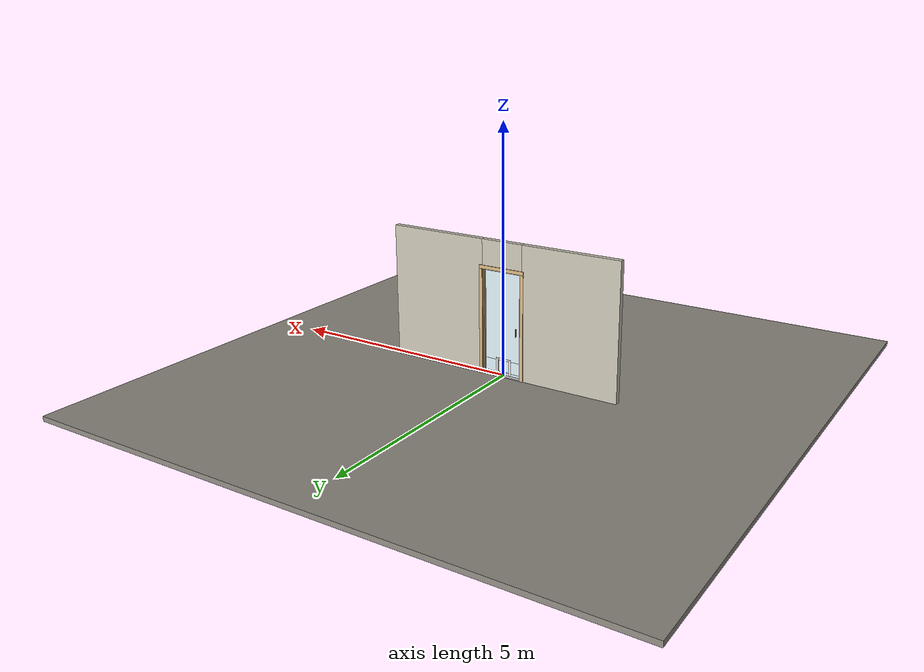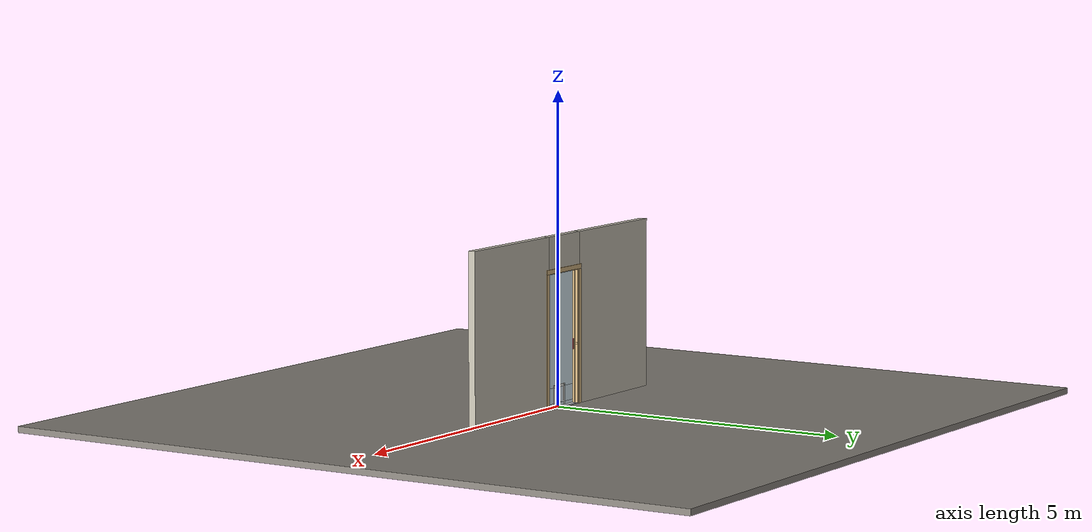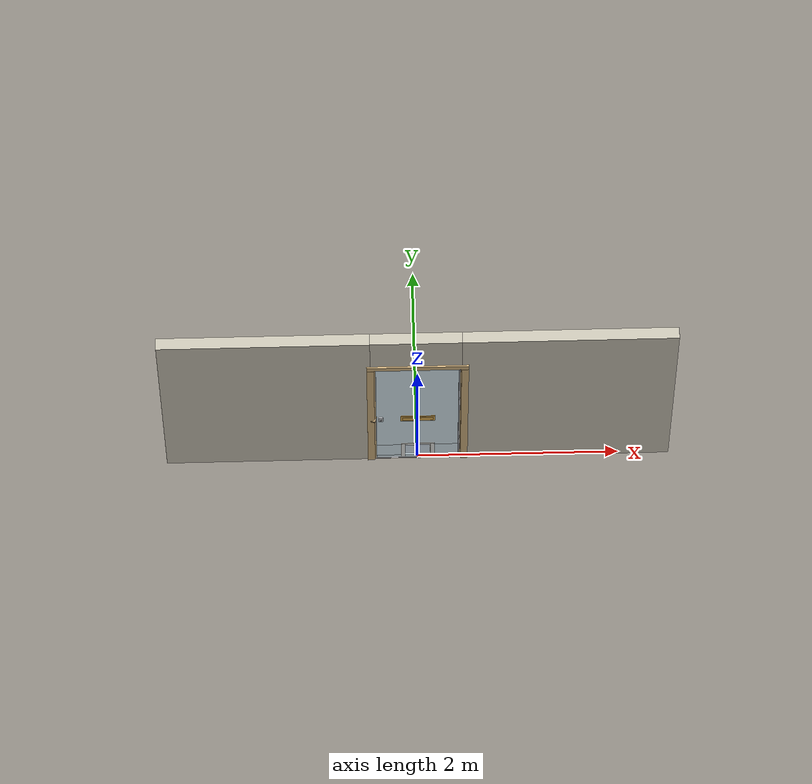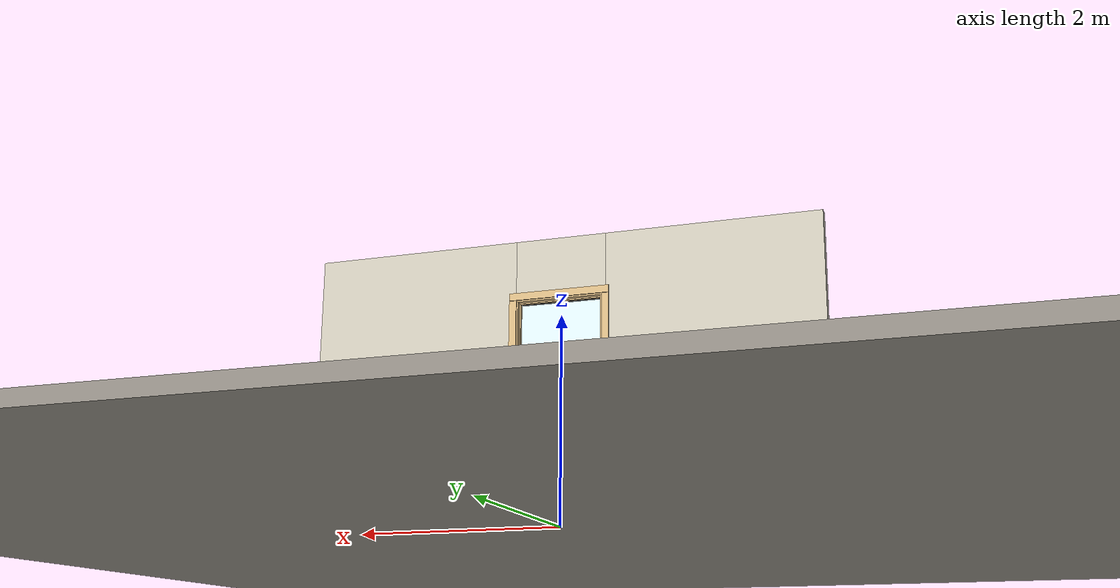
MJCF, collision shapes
<?xml version="1.0" ?>
<mujoco model="db0315_swing_single_full">
  <compiler angle="radian" meshdir="../../hardware" texturedir="../../textures" autolimits="true" inertiafromgeom="false"/>
  <option timestep="0.002" integrator="implicitfast" cone="elliptic" impratio="10" noslip_iterations="3">
    <flag multiccd="enable"/>
  </option>
  <size memory="16M"/>
  <default>
    <geom condim="4" solref="0.005 1" solimp="0.95 0.99 0.001"/>
    <joint solreflimit="0.005 1" solimplimit="0.95 0.99 0.001"/>
    <tendon solreflimit="0.005 1"/>
    <equality solref="0.002 1"/>
  </default>
  <visual>
    <headlight ambient="0.4 0.4 0.4" diffuse="0.7 0.7 0.7" specular="0.2 0.2 0.2"/>
    <quality shadowsize="4096"/>
    <map znear="0.01" zfar="60"/>
  </visual>
  <asset>
    <mesh name="peephole_f829311a59" file="peephole_f829311a59.obj"/>
    <mesh name="pull_1e5d69a91a" file="pull_1e5d69a91a.obj"/>
    <material name="mat_floor" rgba="0.55 0.53 0.5 1" specular="0.2" shininess="0.15" reflectance="0"/>
    <material name="mat_wall" rgba="0.78 0.76 0.7 1" specular="0.2" shininess="0.1" reflectance="0"/>
    <material name="mat_leaf" rgba="0.85 0.92 0.95 0.25" specular="0.2" shininess="0.95" reflectance="0.1"/>
    <material name="mat_glass" rgba="0.85 0.92 0.95 0.25" specular="0.2" shininess="0.95" reflectance="0.1"/>
    <material name="mat_hinge" rgba="0.65 0.66 0.68 1" specular="0.74" shininess="0.5" reflectance="0.36"/>
    <material name="mat_op_aluminum" rgba="0.8 0.81 0.83 1" specular="0.8" shininess="0.6" reflectance="0.4"/>
    <material name="mat_op_stainless" rgba="0.75 0.76 0.77 1" specular="0.8" shininess="0.65" reflectance="0.4"/>
    <material name="mat_bolt" rgba="0.85 0.66 0.3 1" specular="0.8" shininess="0.75" reflectance="0.4"/>
    <material name="mat_frame" rgba="0.82 0.7 0.5 1" specular="0.2" shininess="0.45" reflectance="0"/>
    <material name="mat_seal" rgba="0.1 0.1 0.1 1" specular="0.2" shininess="0.1" reflectance="0"/>
    <material name="mat_threshold" rgba="0.8 0.81 0.83 1" specular="0.8" shininess="0.6" reflectance="0.4"/>
    <material name="mat_peephole" rgba="0.85 0.66 0.3 1" specular="0.8" shininess="0.75" reflectance="0.4"/>
    <material name="mat_mailslot" rgba="0.85 0.66 0.3 1" specular="0.8" shininess="0.75" reflectance="0.4"/>
    <material name="mat_petframe" rgba="0.92 0.92 0.9 1" specular="0.2" shininess="0.6" reflectance="0"/>
    <material name="mat_petflap" rgba="0.85 0.9 0.95 0.45" specular="0.2" shininess="0.7" reflectance="0.1"/>
    <texture name="skybox" type="skybox" builtin="gradient" rgb1="0.6 0.7 0.85" rgb2="0.9 0.92 0.95" width="256" height="256"/>
  </asset>
  <worldbody>
    <light name="sun" pos="1.5 -2.5 4" dir="-0.3 0.5 -0.8" directional="true" diffuse="0.8 0.8 0.8" specular="0.3 0.3 0.3" castshadow="true"/>
    <light name="fill" pos="-1.5 2.5 3" dir="0.3 -0.5 -0.7" directional="true" diffuse="0.35 0.35 0.4" castshadow="false"/>
    <camera name="robot_view" pos="0 -2.599813 1.812087" xyaxes="1 0 0 0 0.26963 0.962964" fovy="52"/>
    <camera name="far_view" pos="0 2.675812 1.812087" xyaxes="-1 0 0 0 -0.26963 0.962964" fovy="52"/>
    <camera name="iso" pos="-2.004737 -2.177763 2.234138" xyaxes="0.741536 -0.670913 0 0.242917 0.268487 0.932151" fovy="46"/>
    <camera name="detail_handle" pos="-0.136 -0.7275 1.245" xyaxes="0.97561 0.219512 0 -0.070934 0.315262 0.94635" fovy="38"/>
    <geom name="floor" type="box" size="6 6 0.05" pos="0 0 -0.05" material="mat_floor" group="0" contype="1" conaffinity="1" friction="0.8 0.005 0.0001" density="2400"/>
    <geom name="wall_left" type="box" size="1.0205 0.0575 1.3735" pos="-1.4795 0.038 1.3735" material="mat_wall" group="0" contype="1" conaffinity="1" friction="0.6 0.005 0.0001" density="800"/>
    <geom name="wall_right" type="box" size="1.0355 0.0575 1.3735" pos="1.4645 0.038 1.3735" material="mat_wall" group="0" contype="1" conaffinity="1" friction="0.6 0.005 0.0001" density="800"/>
    <geom name="wall_header" type="box" size="0.444 0.0575 0.2755" pos="-0.015 0.038 2.4715" material="mat_wall" group="0" contype="1" conaffinity="1" friction="0.6 0.005 0.0001" density="800"/>
    <geom name="jamb_hinge" type="box" size="0.0095 0.0575 1.0735" pos="0.4195 0.038 1.0735" material="mat_frame" group="0" contype="1" conaffinity="1" friction="0.6 0.005 0.0001" density="400"/>
    <geom name="strike_965_wall_n" type="box" size="0.0245 0.045 0.0115" pos="-0.4345 0.0505 0.965" material="mat_frame" group="0" contype="1" conaffinity="1" friction="0.6 0.005 0.0001" density="400"/>
    <geom name="strike_965_wall_p" type="box" size="0.0245 0.008 0.0115" pos="-0.4345 -0.0135 0.965" material="mat_frame" group="0" contype="1" conaffinity="1" friction="0.6 0.005 0.0001" density="400"/>
    <geom name="strike_965_ramp" type="box" size="0.0245 0.015977 0.0115" pos="-0.438502 -0.028066 0.965" quat="0.984601 0 0 -0.174819" material="mat_frame" group="0" contype="1" conaffinity="1" friction="0.12 0.005 0.0001" density="400"/>
    <geom name="strike_965_back" type="box" size="0.0175 0.0055 0.0115" pos="-0.4415 0 0.965" material="mat_frame" group="0" contype="1" conaffinity="1" friction="0.6 0.005 0.0001" density="400"/>
    <geom name="jamb_strike_0" type="box" size="0.0245 0.0575 0.47675" pos="-0.4345 0.038 0.47675" material="mat_frame" group="0" contype="1" conaffinity="1" friction="0.6 0.005 0.0001" density="400"/>
    <geom name="jamb_strike_1" type="box" size="0.0245 0.0575 0.58525" pos="-0.4345 0.038 1.56175" material="mat_frame" group="0" contype="1" conaffinity="1" friction="0.6 0.005 0.0001" density="400"/>
    <geom name="jamb_head" type="box" size="0.444 0.0575 0.0095" pos="-0.015 0.038 2.1565" material="mat_frame" group="0" contype="1" conaffinity="1" friction="0.6 0.005 0.0001" density="400"/>
    <geom name="head_stud" type="box" size="0.444 0.0575 0.015" pos="-0.015 0.038 2.181" material="mat_wall" group="0" contype="1" conaffinity="1" friction="0.6 0.005 0.0001" density="500"/>
    <geom name="stop_hinge" type="box" size="0.0055 0.016 1.0735" pos="0.4045 0.029 1.0735" material="mat_frame" group="0" contype="1" conaffinity="1" friction="0.6 0.005 0.0001" density="400"/>
    <geom name="stop_strike" type="box" size="0.0055 0.016 1.0735" pos="-0.4045 0.029 1.0735" material="mat_frame" group="0" contype="1" conaffinity="1" friction="0.6 0.005 0.0001" density="400"/>
    <geom name="stop_head" type="box" size="0.41 0.016 0.0055" pos="0 0.029 2.1415" material="mat_frame" group="0" contype="1" conaffinity="1" friction="0.6 0.005 0.0001" density="400"/>
    <geom name="seal_hinge" type="box" size="0.004 0.002 1.0735" pos="0.407 0.0145 1.0735" material="mat_seal" group="1" contype="0" conaffinity="0" density="1100"/>
    <geom name="seal_strike" type="box" size="0.004 0.002 1.0735" pos="-0.407 0.0145 1.0735" material="mat_seal" group="1" contype="0" conaffinity="0" density="1100"/>
    <geom name="seal_head" type="box" size="0.39 0.002 0.008" pos="0 0.0145 2.135" material="mat_seal" group="1" contype="0" conaffinity="0" density="1100"/>
    <geom name="casing_l_n" type="box" size="0.035 0.008 1.083" pos="-0.459 -0.0275 1.0735" material="mat_frame" group="2" contype="0" conaffinity="0" density="400"/>
    <geom name="casing_r_n" type="box" size="0.035 0.008 1.083" pos="0.459 -0.0275 1.0735" material="mat_frame" group="2" contype="0" conaffinity="0" density="400"/>
    <geom name="casing_h_n" type="box" size="0.494 0.008 0.035" pos="0 -0.0275 2.196" material="mat_frame" group="2" contype="0" conaffinity="0" density="400"/>
    <geom name="casing_l_p" type="box" size="0.035 0.008 1.083" pos="-0.459 0.1035 1.0735" material="mat_frame" group="2" contype="0" conaffinity="0" density="400"/>
    <geom name="casing_r_p" type="box" size="0.035 0.008 1.083" pos="0.459 0.1035 1.0735" material="mat_frame" group="2" contype="0" conaffinity="0" density="400"/>
    <geom name="casing_h_p" type="box" size="0.494 0.008 0.035" pos="0 0.1035 2.196" material="mat_frame" group="2" contype="0" conaffinity="0" density="400"/>
    <geom name="threshold" type="box" size="0.429 0.0575 0.0065" pos="0 0.038 0.0065" material="mat_threshold" group="0" contype="1" conaffinity="1" friction="0.5 0.005 0.0001" density="2700"/>
    <site name="approach_point" pos="0 -1.5 0" quat="1 0 0 0" size="0.05" rgba="0.2 0.9 0.2 0.5" group="4"/>
    <site name="goal_point" pos="0 1.5 0" quat="1 0 0 0" size="0.05" rgba="0.2 0.9 0.2 0.5" group="4"/>
    <site name="door_plane_center" pos="0 0 1.0735" quat="1 0 0 0" size="0.02" rgba="0.2 0.9 0.2 0.5" group="4"/>
    <body name="leaf" pos="0.41 0 0">
      <inertial pos="-0.388177 -0.001757 1.00333" mass="34.010971" quat="-0.492792 -0.502112 -0.497984 0.507002" diaginertia="1.962292356 11.637098886 13.586033859"/>
      <joint name="leaf_hinge" type="hinge" axis="0 0 1" pos="-0.003 -0.0195 0" limited="true" range="0 1.745329" solreflimit="0.02 1" damping="0.218374" frictionloss="1.868316" armature="0.02"/>
      <geom name="leaf_slab_below" type="box" size="0.4065 0.0125 0.0245" pos="-0.4095 0 0.0415" material="mat_leaf" group="0" contype="1" conaffinity="1" friction="0.4 0.005 0.0001" density="1"/>
      <geom name="leaf_slab_above" type="box" size="0.4065 0.0125 0.9125" pos="-0.4095 0 1.2305" material="mat_leaf" group="0" contype="1" conaffinity="1" friction="0.4 0.005 0.0001" density="1"/>
      <geom name="leaf_slab_left" type="box" size="0.14025 0.0125 0.126" pos="-0.67575 0 0.192" material="mat_leaf" group="0" contype="1" conaffinity="1" friction="0.4 0.005 0.0001" density="1"/>
      <geom name="leaf_slab_right" type="box" size="0.14025 0.0125 0.126" pos="-0.14325 0 0.192" material="mat_leaf" group="0" contype="1" conaffinity="1" friction="0.4 0.005 0.0001" density="1"/>
      <geom name="hinge_continuous" type="cylinder" size="0.0088 1.053" pos="-0.003 -0.0195 1.08" material="mat_hinge" group="1" contype="0" conaffinity="0" density="2700"/>
      <geom name="leaf_inside_pull_p" type="mesh" mesh="pull_1e5d69a91a" pos="-0.726 0.0125 0.965" quat="0 0 0.707107 0.707107" material="mat_op_stainless" group="1" contype="0" conaffinity="0" density="3000"/>
      <geom name="leaf_inside_pull_col_p" type="capsule" size="0.0095 0.08" pos="-0.726 0.0725 0.965" material="mat_op_stainless" group="3" contype="1" conaffinity="1" rgba="0.8 0.3 0.3 0.25" friction="0.7 0.01 0.0001" density="3000"/>
      <geom name="leaf_pushbutton_housing" type="box" size="0.02 0.006 0.045" pos="-0.771 -0.0185 0.965" material="mat_op_aluminum" group="1" contype="0" conaffinity="0" density="2700"/>
      <geom name="leaf_latch_bolt_faceplate" type="box" size="0.0006 0.01 0.0215" pos="-0.8154 0 0.965" material="mat_bolt" group="1" contype="0" conaffinity="0" density="8500"/>
      <geom name="peephole" type="mesh" mesh="peephole_f829311a59" pos="-0.4095 -0.0125 1.517" quat="0 0 -0.707107 0.707107" material="mat_peephole" group="2" contype="0" conaffinity="0" density="8500"/>
      <geom name="mail_slot_frame" type="box" size="0.17 0.003 0.055" pos="-0.4095 -0.0155 0.967" material="mat_mailslot" group="2" contype="0" conaffinity="0" density="8500"/>
      <geom name="pet_frame_top" type="box" size="0.165 0.0185 0.02" pos="-0.4095 0 0.337" material="mat_petframe" group="2" contype="0" conaffinity="0" density="1200"/>
      <geom name="pet_frame_l" type="box" size="0.02 0.0185 0.165" pos="-0.5545 0 0.192" material="mat_petframe" group="2" contype="0" conaffinity="0" density="1200"/>
      <geom name="pet_frame_r" type="box" size="0.02 0.0185 0.165" pos="-0.2645 0 0.192" material="mat_petframe" group="2" contype="0" conaffinity="0" density="1200"/>
      <site name="leaf_inside_pull_grip_p" pos="-0.726 0.0725 0.965" quat="1 0 0 0" size="0.012" rgba="0.2 0.9 0.2 0.5" group="4"/>
      <site name="leaf_edge_mid" pos="-0.816 0 1.063" quat="1 0 0 0" size="0.02" rgba="0.2 0.9 0.2 0.5" group="4"/>
      <body name="leaf_pushbutton" pos="-0.771 -0.0225 0.965">
        <inertial pos="0 -0.006 0" mass="0.010179" quat="0 0 0.707107 0.707107" diaginertia="0.000000377 0.000000377 0.000000509"/>
        <joint name="leaf_pushbutton_slide" type="slide" axis="0 1 0" limited="true" range="0 0.006" damping="16.008936" frictionloss="0.5" stiffness="400" springref="-0.0075" armature="0.15"/>
        <geom name="leaf_pushbutton_geom" type="cylinder" size="0.01 0.006" pos="0 -0.006 0" quat="0.707107 -0.707107 0 0" material="mat_op_aluminum" group="0" contype="1" conaffinity="1" friction="0.6 0.005 0.0001" density="2700"/>
        <site name="leaf_push" pos="0 -0.012 0" quat="1 0 0 0" size="0.01" rgba="0.2 0.9 0.2 0.5" group="4"/>
      </body>
      <body name="leaf_latch_bolt" pos="-0.816 0 0.965">
        <inertial pos="0.008 0 0" mass="0.014242" quat="0 0 -0.707107 0.707107" diaginertia="0.00000011 0.000001386 0.000001386"/>
        <joint name="leaf_latch_bolt_slide" type="slide" axis="1 0 0" limited="true" range="0 0.01" damping="2" frictionloss="0.3" stiffness="300" springref="-0.006667" armature="0.1"/>
        <geom name="leaf_latch_bolt_capsule" type="capsule" size="0.004 0.014" pos="0.008 0 0" quat="0.707107 0 -0.707107 0" material="mat_bolt" group="0" contype="1" conaffinity="1" friction="0.2 0.005 0.0001" density="8500"/>
      </body>
      <body name="mail_slot_flap" pos="-0.4095 -0.021 1.002">
        <inertial pos="0 0 -0.035" mass="0.714" quat="0 0 0.707107 0.707107" diaginertia="0.000292502 0.005355952 0.00564655"/>
        <joint name="mail_slot_hinge" type="hinge" axis="-1 0 0" limited="true" range="0 1.2" damping="0.01" stiffness="0.3" springref="-0.3" armature="0.002"/>
        <geom name="mail_slot_flap_geom" type="box" size="0.15 0.002 0.035" pos="0 0 -0.035" material="mat_mailslot" group="0" contype="1" conaffinity="1" friction="0.6 0.005 0.0001" density="8500"/>
      </body>
      <body name="pet_flap" pos="-0.4095 0 0.317">
        <inertial pos="0 0 -0.125" mass="0.180985" quat="0 0 0.707107 0.707107" diaginertia="0.000883508 0.000883508 0.001766533"/>
        <joint name="pet_flap_hinge" type="hinge" axis="-1 0 0" limited="true" range="-1.45 1.45" damping="0.02" frictionloss="0.02" armature="0.005"/>
        <geom name="pet_flap_geom" type="box" size="0.121 0.002 0.121" pos="0 0 -0.125" material="mat_petflap" group="0" contype="1" conaffinity="1" friction="0.6 0.005 0.0001" density="1250"/>
      </body>
    </body>
  </worldbody>
  <tendon>
    <fixed name="leaf_latch_bolt_coupling" limited="true" range="0 10">
      <joint joint="leaf_latch_bolt_slide" coef="1"/>
      <joint joint="leaf_pushbutton_slide" coef="-2"/>
    </fixed>
  </tendon>
  <sensor>
    <jointpos name="leaf_hinge_pos" joint="leaf_hinge"/>
    <jointvel name="leaf_hinge_vel" joint="leaf_hinge"/>
    <jointpos name="leaf_pushbutton_slide_pos" joint="leaf_pushbutton_slide"/>
    <jointvel name="leaf_pushbutton_slide_vel" joint="leaf_pushbutton_slide"/>
    <jointpos name="leaf_latch_bolt_slide_pos" joint="leaf_latch_bolt_slide"/>
    <jointvel name="leaf_latch_bolt_slide_vel" joint="leaf_latch_bolt_slide"/>
    <jointpos name="pet_flap_hinge_pos" joint="pet_flap_hinge"/>
    <jointvel name="pet_flap_hinge_vel" joint="pet_flap_hinge"/>
  </sensor>
</mujoco>
